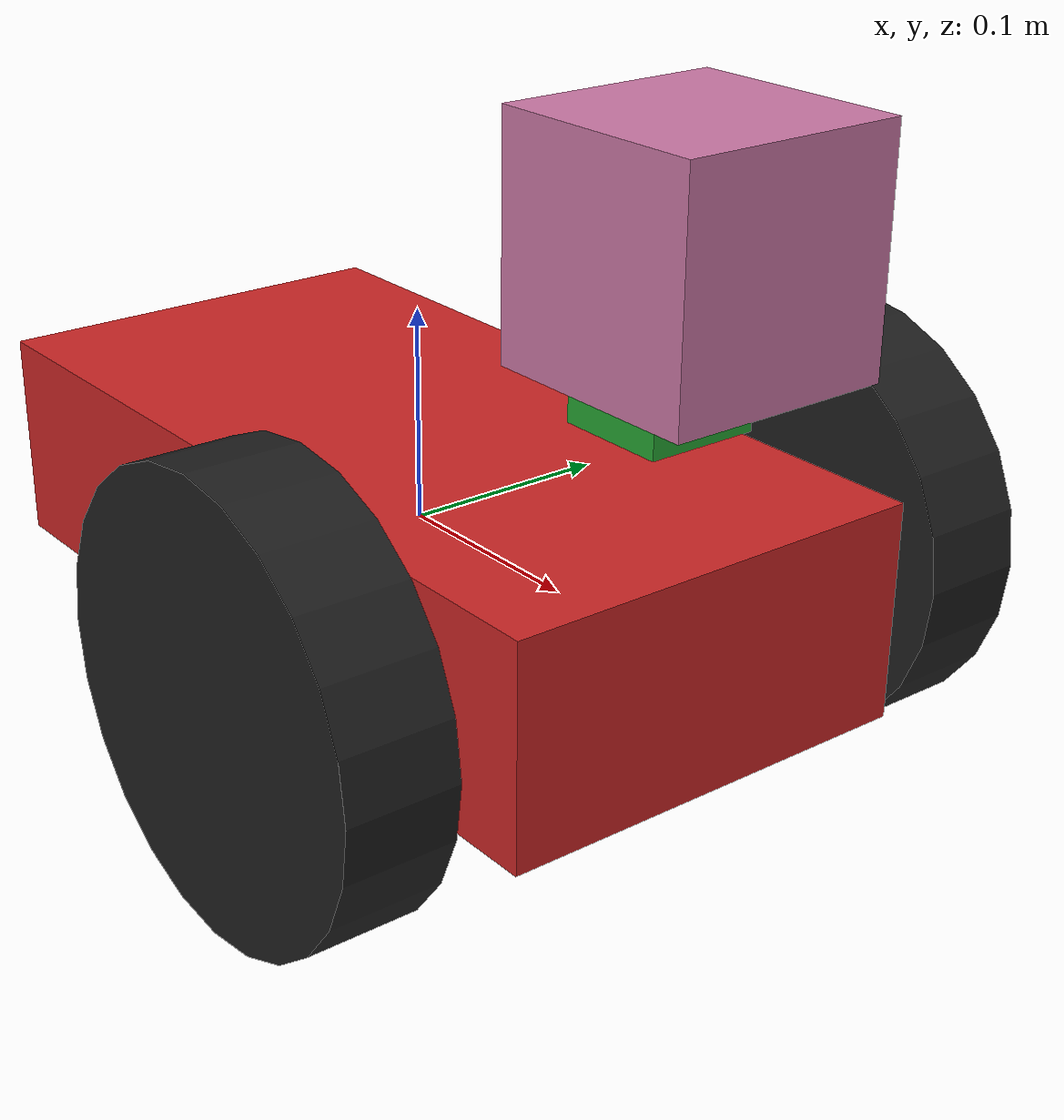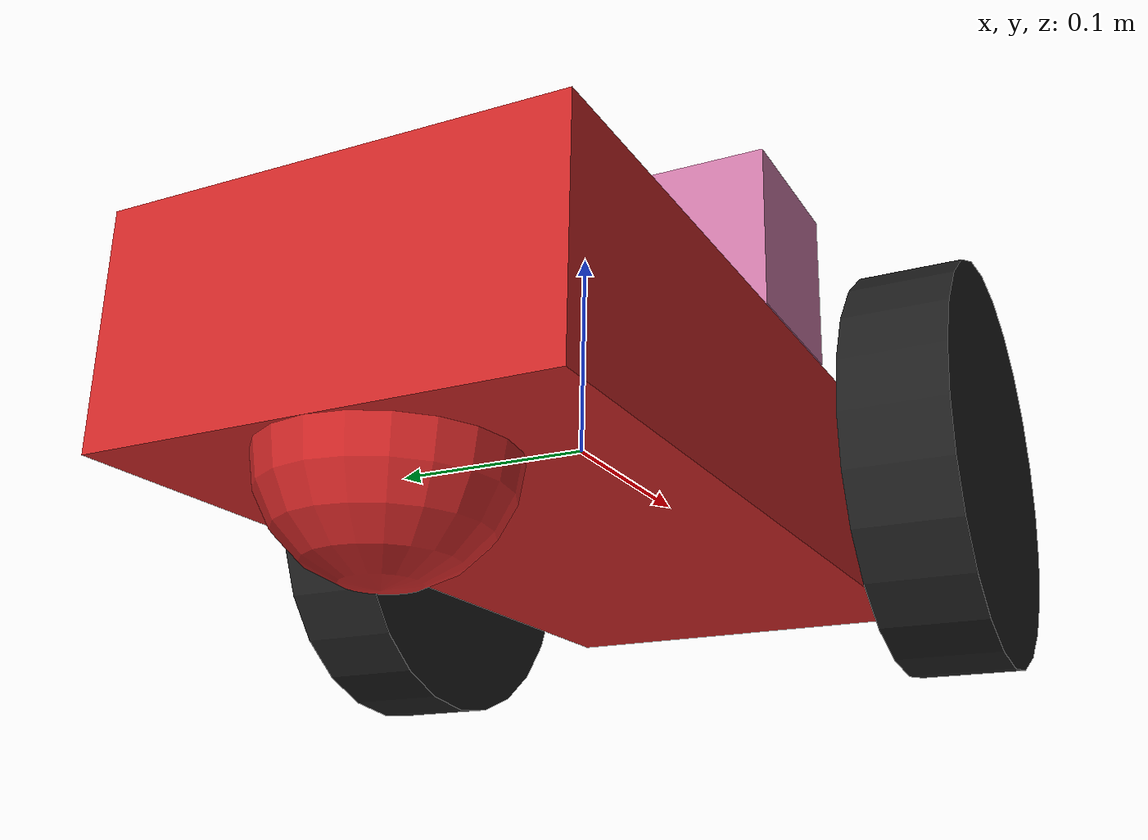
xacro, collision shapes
<?xml version='1.0'?>

<robot name="car_bot" xmlns:xacro="http://www.ros.org/wiki/xacro">

  <xacro:property name="cameraSize" value="0.05"/>
  <xacro:property name="cameraMass" value="0.1"/>
  <xacro:property name="deg_to_rad" value="0.0174532925199432"/>

  <xacro:include filename="$(find slam_project)/urdf/car_bot.gazebo" />
  <xacro:include filename="$(find slam_project)/urdf/materials.xacro" />
  <xacro:include filename="$(find slam_project)/urdf/macros.xacro" />

  <link name="base_footprint"></link>

  <joint name="base_footprint_joint" type="fixed">
    <origin xyz="0 0 0" rpy="0 0 0" />
    <parent link="base_footprint"/>
    <child link="base_link" />
  </joint>

  <link name='base_link'>
    <pose>0 0 0.1 0 0 0</pose>

    <inertial>
      <mass value="10.0"/>
      <origin xyz="0.0 0 0.1" rpy=" 0 0 0"/>
      <inertia
          ixx="0.5" ixy="0" ixz="0"
          iyy="1.0" iyz="0" izz="0.1"/>
    </inertial>

    <collision name='base_link_collision'>
      <geometry>
        <box size=".40 .2 .1"/>
      </geometry>
    </collision>

    <visual name='base_link_visual'>
      <origin xyz="0 0 0" rpy=" 0 0 0"/>
      <geometry>
        <box size=".40 .2 .1"/>
      </geometry>
    </visual>

    <collision name='caster_collision'>
      <origin xyz="-0.15 0 -0.05" rpy=" 0 0 0"/>
      <geometry>
        <sphere radius="0.05"/>
      </geometry>
      <surface>
        <friction>
          <ode>
            <mu>0</mu>
            <mu2>0</mu2>
            <slip1>1.0</slip1>
            <slip2>1.0</slip2>
          </ode>
        </friction>
      </surface>
    </collision>

    <visual name='caster_visual'>
      <origin xyz="-0.15 0 -0.05" rpy=" 0 0 0"/>
      <geometry>
        <sphere radius="0.05"/>
      </geometry>
    </visual>
  </link>

  <link name="left_wheel">
    <!--origin xyz="0.1 0.13 0.1" rpy="0 1.5707 1.5707"/-->
    <collision name="collision">
      <origin xyz="0 0 0" rpy="0 1.5707 1.5707"/>
      <geometry>
        <cylinder radius="0.1" length="0.05"/>
      </geometry>
    </collision>
    <visual name="left_wheel_visual">
      <origin xyz="0 0 0" rpy="0 1.5707 1.5707"/>
      <geometry>
        <cylinder radius="0.1" length="0.05"/>
      </geometry>
    </visual>
    <inertial>
      <origin xyz="0 0 0" rpy="0 1.5707 1.5707"/>
      <mass value="5"/>
      <cylinder_inertia m="5" r="0.1" h="0.05"/>
      <inertia
        ixx="1.0" ixy="0.0" ixz="0.0"
        iyy="1.0" iyz="0.0"
        izz="1.0"/>
    </inertial>
  </link>

  <link name="right_wheel">
    <!--origin xyz="0.1 -0.13 0.1" rpy="0 1.5707 1.5707"/-->
    <collision name="collision">
      <origin xyz="0 0 0" rpy="0 1.5707 1.5707"/>
      <geometry>
        <cylinder radius="0.1" length="0.05"/>
      </geometry>
    </collision>
    <visual name="right_wheel_visual">
      <origin xyz="0 0 0" rpy="0 1.5707 1.5707"/>
      <geometry>
        <cylinder radius="0.1" length="0.05"/>
      </geometry>
    </visual>
    <inertial>
      <origin xyz="0 0 0" rpy="0 1.5707 1.5707"/>
      <mass value="5"/>
      <cylinder_inertia m="5" r="0.1" h="0.05"/>
      <inertia
        ixx="1.0" ixy="0.0" ixz="0.0"
        iyy="1.0" iyz="0.0"
        izz="1.0"/>
    </inertial>
  </link>

  <joint type="continuous" name="left_wheel_hinge">
    <origin xyz="0.1 0.15 0" rpy="0 0 0"/>
    <child link="left_wheel"/>
    <parent link="base_link"/>
    <axis xyz="0 1 0" rpy="0 0 0"/>
    <limit effort="10000" velocity="1000"/>
    <joint_properties damping="0.0" friction="0.0"/>
  </joint>

  <joint type="continuous" name="right_wheel_hinge">
    <origin xyz="0.1 -0.15 0" rpy="0 0 0"/>
    <child link="right_wheel"/>
    <parent link="base_link"/>
    <axis xyz="0 1 0" rpy="0 0 0"/>
    <limit effort="10000" velocity="1000"/>
    <joint_properties damping="0.0" friction="0.0"/>
  </joint>

  <!-- SENSORS -->
  <!-- Camera -->

  <link name="camera">
    <collision>
      <origin xyz="0 0 0" rpy="0 0 0"/>
      <geometry>
        <box size="${cameraSize} ${cameraSize} ${cameraSize}"/>
      </geometry>
    </collision>

    <visual>
      <origin xyz="0 0 0" rpy="0 0 0"/>
      <geometry>
        <!-- box size="${cameraSize} ${cameraSize} ${cameraSize}"/ -->
        <mesh filename="package://slam_project/meshes/kinect.dae"/>
      </geometry>
      <material name="green"/>
    </visual>

    <inertial>
      <mass value="${cameraMass}" />
      <origin xyz="0 0 0" rpy="0 0 0"/>
      <box_inertia m="${cameraMass}" x="${cameraSize}" y="${cameraSize}" z="${cameraSize}" />
      <inertia ixx="1e-6" ixy="0" ixz="0" iyy="1e-6" iyz="0" izz="1e-6" />
    </inertial>
  </link>

  <joint name="camera_joint" type="fixed">
    <!-- axis xyz="0 1 0" / -->
    <!-- origin xyz=".15 0 .089" rpy="0 0 1.5707"/ -->
    <origin xyz=".16 0 .12" rpy="0 0 0"/>
    <parent link="base_link"/>
    <child link="camera"/>
  </joint>

  <link name="camera_rgbd_frame">
    <!--origin xyz="0 0 0" rpy="0 0 1.5707"/-->
  </link>

  <joint name="camera_rgbd_frame_joint" type="fixed">
    <origin xyz="0 0 0" rpy="-1.5707 0 -1.5707"/>
    <!--origin xyz="0 0 0" rpy="0 0 1.5707"/-->
    <parent link="camera"/>
    <child link="camera_rgbd_frame"/>
  </joint>

  <link name='hokuyo'>
    <inertial>
      <mass value="0.1"/>
        <origin xyz="0.0 0 0" rpy=" 0 0 0"/>
        <inertia ixx="1e-6" ixy="0" ixz="0" iyy="1e-6" iyz="0" izz="1e-6"/>
    </inertial>

    <collision name='collision'>
      <origin xyz="0.0 0 0" rpy=" 0 0 0"/>
        <geometry>
            <box size="0.1 0.1 0.1"/>
        </geometry>
    </collision>

    <visual name='hokuyo_visual'>
      <origin xyz="0.0 0 0" rpy=" 0 0 0"/>
        <geometry>
            <mesh filename="package://slam_project/meshes/hokuyo.dae"/>
        </geometry>
    </visual>
  </link>
  <joint type="fixed" name="hokuyo_joint">
    <origin xyz="0.175 0.0 0.171" rpy="0 0 0"/>
      <child link="hokuyo"/>
        <parent link="base_link"/>
  </joint>

</robot>
